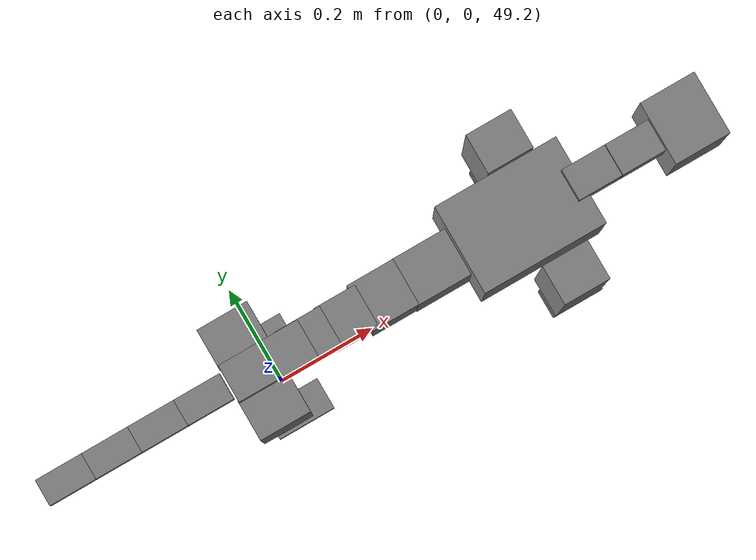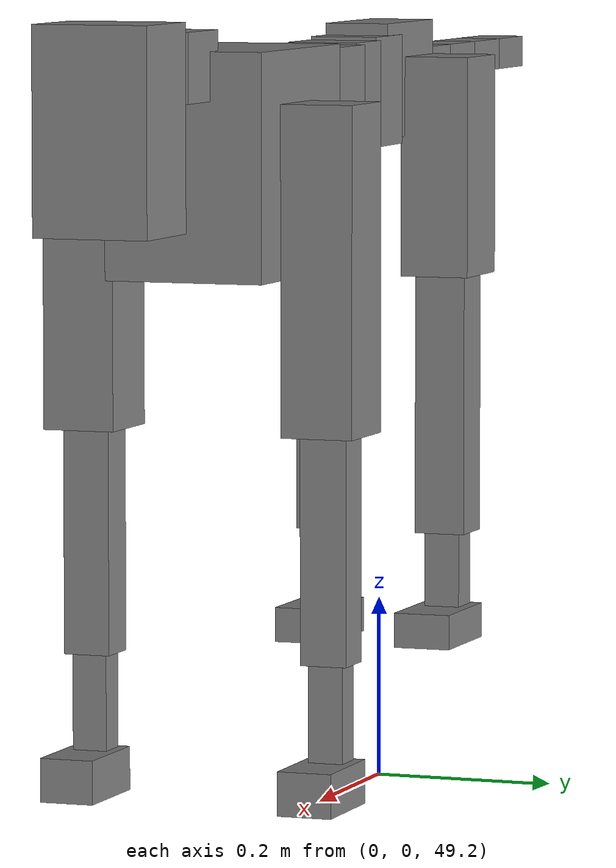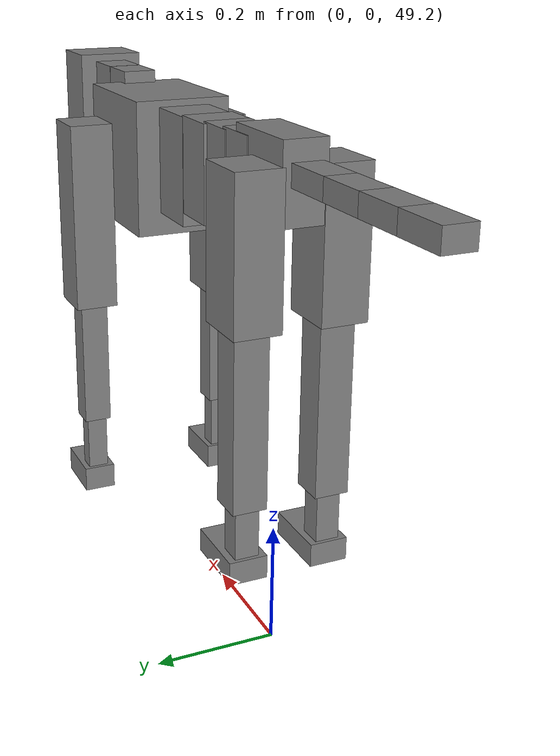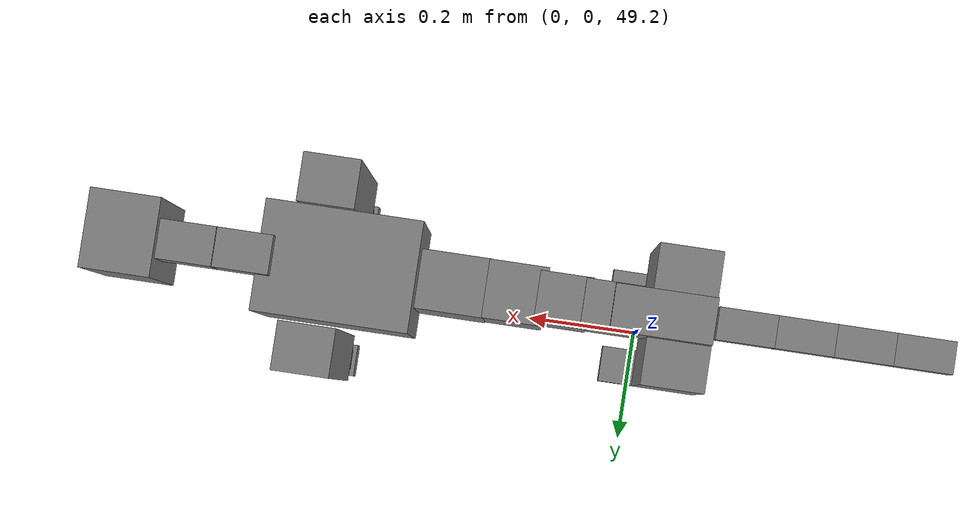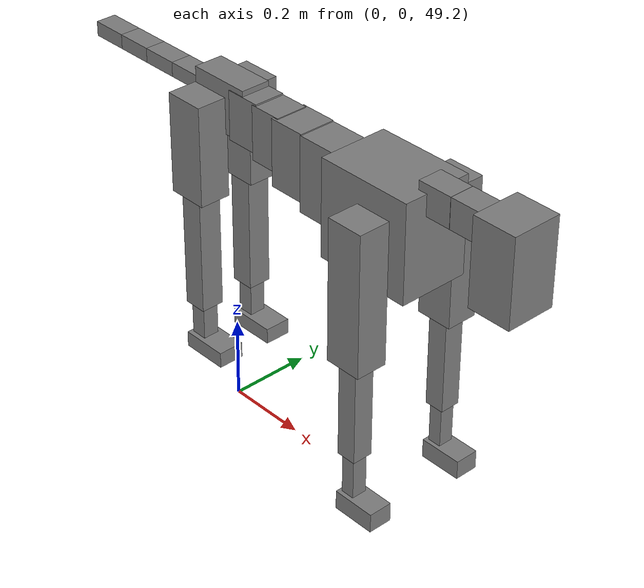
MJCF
<mujoco model="dog">

    <default>
        <joint armature="0.02" stiffness="1" damping="0.2" limited="true"/>
        <geom condim="3" friction="1 0.05 0.05" margin="0.01"/>
        <motor ctrllimited="true" ctrlrange="-1.0 1.0" forcelimited="true" gear="50"/>
    </default>

    <compiler inertiafromgeom="true" angle="radian"/>

    <option timestep="0.016" iterations="50" tolerance="1e-10" solver="Newton" jacobian="dense" cone="pyramidal"/>

    <size nconmax="20000" njmax="60000" nstack="5000000"/>
    <visual>
        <map force="0.1" zfar="30"/>
        <rgba haze="0.15 0.25 0.35 1"/>
        <quality shadowsize="2048"/>
        <global offwidth="800" offheight="800"/>
    </visual>

    <asset>
        <texture type="skybox" builtin="gradient" rgb1="0.3 0.5 0.7" rgb2="0 0 0" width="512" height="512"/>
        <texture name="texplane" type="2d" builtin="checker" rgb1=".2 .3 .4" rgb2=".1 0.15 0.2" width="512" height="512"
                 mark="cross" markrgb=".8 .8 .8"/>
        <texture name="texgeom" type="cube" builtin="flat" mark="cross" width="127" height="1278" rgb1="0.8 0.6 0.4"
                 rgb2="0.8 0.6 0.4" markrgb="1 1 1" random="0.01"/>

        <material name="matplane" reflectance="0.3" texture="texplane" texrepeat="1 1" texuniform="true"/>
        <material name="matgeom" texture="texgeom" texuniform="true" rgba="0.8 0.6 .4 1"/>
    </asset>

    <worldbody>
        <geom name="floor" pos="0 0 0" size="0 0 .25" type="plane" material="matplane" condim="3"/>

        <light directional="false" diffuse=".2 .2 .2" specular="0 0 0" pos="0 0 5" dir="0 0 -1" castshadow="false"/>
        <light mode="targetbodycom" target="torso" directional="false" diffuse=".8 .8 .8" specular="0.3 0.3 0.3"
               pos="0 0 4.0" dir="0 0 -1"/>

        <body name="root" pos="0 0 50">
            <freejoint name="root_1"/>
            <geom type="box" pos="0 0 -0.02" size="0.0774  0.0358  0.063" density="2030"/>

            <body name="spine1" pos="0.054 0 0">
                <joint name="spine1_y" axis="0 1 0" range="0 0.7" limited="true"/>
                <geom type="box" pos="0.02375 0 -0.03" size="0.04375  0.0375  0.05985" density="2030"/>

                <body name="spine2" pos="0.0612 0 0">
                    <joint name="spine2_y" axis="0 1 0" range="-0.15 0.15" limited="true"/>
                    <geom type="box" pos="0.03555  0  -0.04" size="0.04055  0.039  0.06615" density="2030"/>

                    <body name="spine3" pos="0.0730 0 0">
                        <joint name="spine3_y" axis="0 1 0" range="-0.15 0.15" limited="true"/>
                        <geom type="box" pos="0.03555  0  -0.057" size="0.04555  0.0445  0.081" density="2030"/>

                        <body name="spine4" pos="0.0780 0 0">
                            <joint name="spine4_y" axis="0 1 0" range="-0.15 0.15" limited="true"/>
                            <geom type="box" pos="0.05265  0  -0.07" size="0.05265  0.045  0.09135" density="2030"/>

                            <body name="torso" pos="0.1082 0 0">
                                <joint name="torso_y" axis="0 1 0" range="-0.15 0.15" limited="true"/>
                                <geom type="box" pos="0.11925  0  -0.085" size="0.11925  0.085  0.11745"
                                      density="2030"/>

                                <body name="neck1" pos="0.2160  0   0.0180">
                                    <joint name="neck1_y" axis="0 1 0" range="-1.2  -1" limited="true"/>
                                    <geom type="box" pos="0.0423  0  0" size="0.0423  0.03  0.036" density="2325"/>

                                    <body name="neck2" pos="0.0853  0  0">
                                        <joint name="neck2_y" axis="0 1 0" range="0.1  0" limited="true"/>
                                        <geom type="box" pos="0.0423  0  0" size="0.0423  0.03  0.036" density="2325"/>

                                        <body name="head" pos="0.0853  0  0">
                                            <joint name="head_y" axis="0 1 0" range="-0.3  -0.2" limited="true"/>
                                            <geom type="box" pos="0.0531  0  -0.055" size="0.0531  0.06  0.1044"
                                                  density="4030"/>

                                        </body>
                                    </body>
                                </body>

                                <body name="front_shoulder" pos="0.156  0   -0.0480">
                                    <joint name="front_shoulder_y" axis="0 1 0" range="-1 1.5" limited="true"/>
                                    <geom type="box" pos="0 0.13 -0.1434" size="0.0448  0.0383  0.1700" density="1158"/>
                                    <geom type="box" pos="0 -0.13 -0.1434" size="0.0448  0.0383  0.1700"
                                          density="1158"/>

                                    <body name="front_elbow" pos="0  0  -0.2868">
                                        <joint name="front_elbow_y" axis="0 1 0" range="-2 0" limited="true"/>
                                        <geom type="box" pos="0 0.13 -0.1312" size="0.0243  0.0248  0.1312"
                                              density="1081"/>
                                        <geom type="box" pos="0 -0.13 -0.1312" size="0.0243  0.0248  0.1312"
                                              density="1081"/>

                                        <body name="front_wrist" pos="0  0  -0.2624">
                                            <joint name="front_wrist_y" axis="0 1 0" range="-0.2 0" limited="true"/>
                                            <geom type="box" pos="0 0.13 -0.0581" size="0.0166  0.0185  0.0712"
                                                  density="1664"/>
                                            <geom type="box" pos="0 -0.13 -0.0581" size="0.0166  0.0185  0.0712"
                                                  density="1664"/>

                                            <body name="front_finger_end" pos="0  0  -0.1162">
                                                <joint name="front_finger_y" axis="0 1 0" range="-0.4 1"
                                                       limited="true"/>
                                                <geom type="box" pos="0.0288  0.13  -0.0080"
                                                      size="0.0528  0.0288  0.0230" density="1515"/>
                                                <geom type="box" pos="0.0288  -0.13  -0.0080"
                                                      size="0.0528  0.0288  0.0230" density="1515"/>

                                            </body>

                                        </body>
                                    </body>
                                </body>

                            </body>
                        </body>
                    </body>
                </body>
            </body>

            <body name="back_hip" pos="-0.03 0 -0.018">
                <joint name="back_hip_y" axis="0 1 0" range="-1.5 0.3" limited="true"/>
                <geom type="box" pos="0 0.07 -0.0986" size="0.0491  0.0385  0.1214" density="1154"/>
                <geom type="box" pos="0 -0.07 -0.0986" size="0.0491  0.0385  0.1214" density="1154"/>

                <body name="back_knee" pos="0  0  -0.1972">
                    <joint name="back_knee_y" axis="0 1 0" range="0 2.8" limited="true"/>
                    <geom type="box" pos="0 0.07 -0.1476" size="0.0288  0.0284  0.1632" density="1227"/>
                    <geom type="box" pos="0 -0.07 -0.1476" size="0.0288  0.0284  0.1632" density="1227"/>

                    <body name="back_ankle" pos="0  0  -0.2952">
                        <joint name="back_ankle_y" axis="0 1 0" range="-2.2 0" limited="true"/>
                        <geom type="box" pos="0 0.07 -0.0565" size="0.0198  0.0198  0.0678" density="1284"/>
                        <geom type="box" pos="0 -0.07 -0.0565" size="0.0198  0.0198  0.0678" density="1284"/>

                        <body name="back_toe_end" pos="0  0  -0.1131">
                            <joint name="back_toe_y" axis="0 1 0" range="-0.4 1" limited="true"/>
                            <geom type="box" pos="0.0318  0.07  -0.0042" size="0.0582  0.0318  0.0192" density="1515"/>
                            <geom type="box" pos="0.0318  -0.07  -0.0042" size="0.0582  0.0318  0.0192" density="1515"/>

                        </body>
                    </body>
                </body>
            </body>

            <body name="tail1" pos="-0.074 0 -0.006">
                <joint name="tail1_y" axis="0 1 0" range="-0.2 0.2" limited="true"/>
                <geom type="box" pos="-0.0536  0  0" size="0.045  0.025  0.0175" density="1587"/>

                <body name="tail2" pos="-0.09 0 0">
                    <joint name="tail2_y" axis="0 1 0" range="-0.2 0.2" limited="true"/>
                    <geom type="box" pos="-0.0536  0  0" size="0.045  0.025  0.0175" density="1587"/>

                    <body name="tail3" pos="-0.09 0 0">
                        <joint name="tail3_y" axis="0 1 0" range="-0.2 0.2" limited="true"/>
                        <geom type="box" pos="-0.0536  0  0" size="0.045  0.025  0.0175" density="1587"/>

                        <body name="tail4" pos="-0.09 0 0">
                            <joint name="tail4_y" axis="0 1 0" range="-0.2 0.2" limited="true"/>
                            <geom type="box" pos="-0.0536  0  0" size="0.045  0.025  0.0175" density="1587"/>

                        </body>
                    </body>
                </body>
            </body>
        </body>
    </worldbody>

    <actuator>
        <motor joint="spine1_y" forcerange="-150 150     "/>
        <motor joint="spine2_y" forcerange="-150 150     "/>
        <motor joint="spine3_y" forcerange="-150 150     "/>
        <motor joint="spine4_y" forcerange="-150 150     "/>
        <motor joint="torso_y" forcerange="-150 150     "/>
        <motor joint="neck1_y" forcerange="-100 100       "/>
        <motor joint="neck2_y" forcerange="-100 100       "/>
        <motor joint="head_y" forcerange="-150 150       "/>
        <motor joint="front_shoulder_y" forcerange="-165.82 189.23"/>
        <motor joint="front_elbow_y" forcerange="-101.19 179.25"/>
        <motor joint="front_wrist_y" forcerange="-76.08 71.86"/>
        <motor joint="front_finger_y" forcerange="-52.13 61.62"/>
        <motor joint="back_hip_y" forcerange="-320.80 392.60"/>
        <motor joint="back_knee_y" forcerange="-346.61 266.11"/>
        <motor joint="back_angle_y" forcerange="-166.12 51.05"/>
        <motor joint="back_toe_y" forcerange="-50.10 124.06"/>
        <motor joint="tail1_y" forcerange="-50 50     "/>
        <motor joint="tail2_y" forcerange="-50 50     "/>
        <motor joint="tail3_y" forcerange="-50 50     "/>
        <motor joint="tail4_y" forcerange="-50 50     "/>
    </actuator>
</mujoco>
